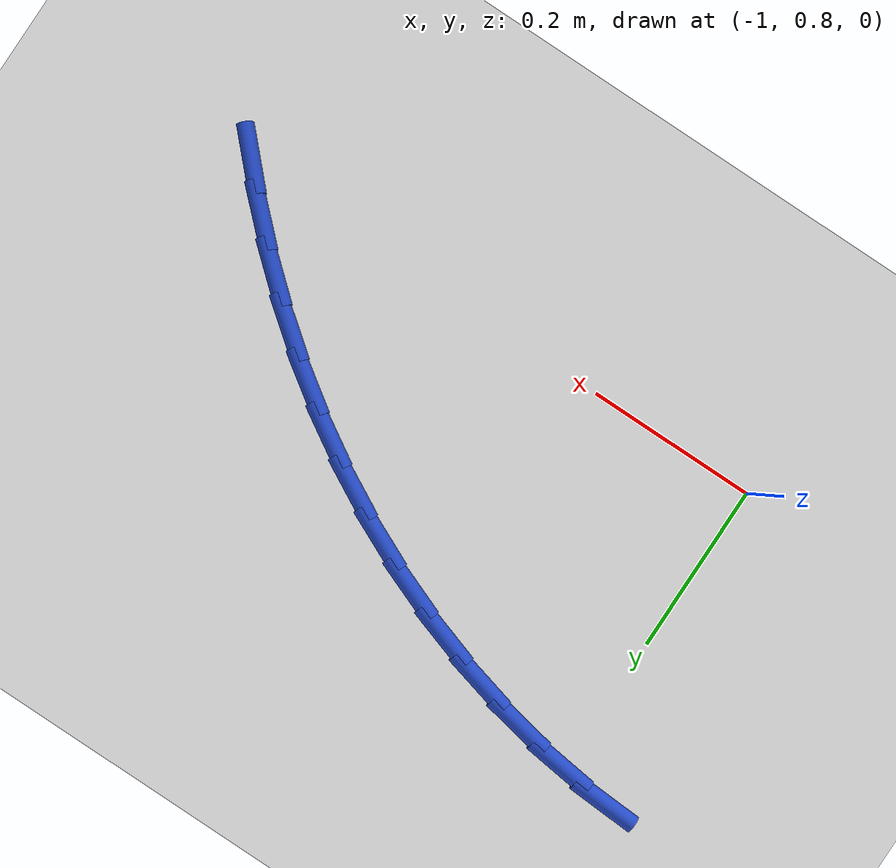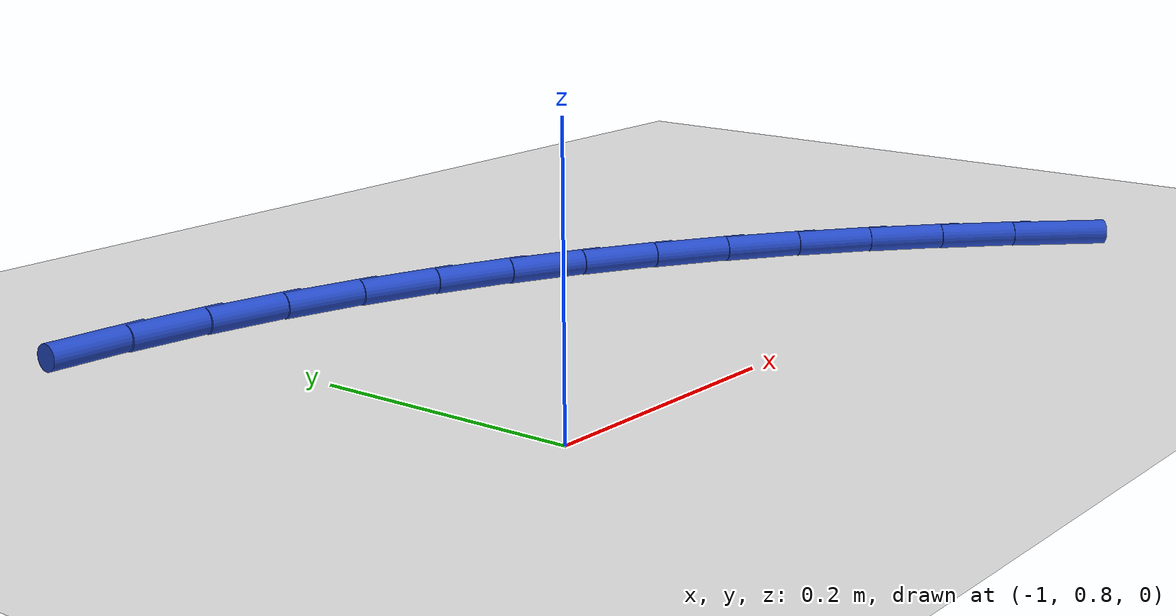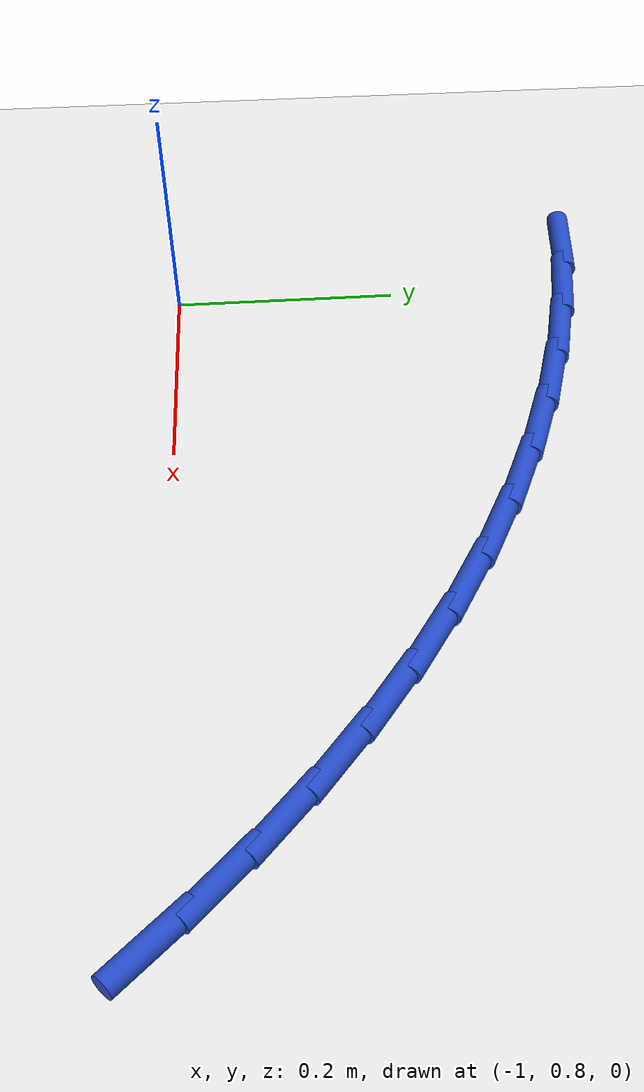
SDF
<sdf version="1.6">
 <world name="default">
  <model name="ground_plane">
   <static>1</static>
   <link name="link">
    <collision name="collision">
     <geometry><plane><normal>0 0 1</normal><size>100 100</size></plane></geometry>
     <surface><friction><ode><mu>100</mu><mu2>50</mu2></ode></friction></surface>
    </collision>
    <visual name="visual">
     <cast_shadows>0</cast_shadows>
     <geometry><plane><normal>0 0 1</normal><size>100 100</size></plane></geometry>
     <material>
      <script><uri>file://media/materials/scripts/gazebo.material</uri><name>Gazebo/WhiteGlow</name></script>
     </material>
    </visual>
   </link>
  </model>
  <model name="line">
   <link name="link_14">
    <pose>-0.3418738796191341 0.7961591052603095 0.01 0 1.57 -0.8116898446023478</pose>
    <collision name="collision">
     <geometry><cylinder><radius>0.01</radius><length>0.08</length></cylinder></geometry>
    </collision>
    <visual name="visual">
     <material>
      <script><name>Gazebo/Blue</name><uri>file://media/materials/scripts/gazebo.material</uri></script>
     </material>
     <geometry><cylinder><radius>0.01</radius><length>0.08</length></cylinder></geometry>
    </visual>
   </link>
   <link name="link_15">
    <pose>-0.3854197809296602 0.8420571811112181 0.01 0 1.57 -0.7625746614607867</pose>
    <collision name="collision">
     <geometry><cylinder><radius>0.01</radius><length>0.08</length></cylinder></geometry>
    </collision>
    <visual name="visual">
     <material>
      <script><name>Gazebo/Blue</name><uri>file://media/materials/scripts/gazebo.material</uri></script>
     </material>
     <geometry><cylinder><radius>0.01</radius><length>0.08</length></cylinder></geometry>
    </visual>
   </link>
   <link name="link_16">
    <pose>-0.4311023386738211 0.8857006519939538 0.01 0 1.57 -0.7119173935935194</pose>
    <collision name="collision">
     <geometry><cylinder><radius>0.01</radius><length>0.08</length></cylinder></geometry>
    </collision>
    <visual name="visual">
     <material>
      <script><name>Gazebo/Blue</name><uri>file://media/materials/scripts/gazebo.material</uri></script>
     </material>
     <geometry><cylinder><radius>0.01</radius><length>0.08</length></cylinder></geometry>
    </visual>
   </link>
   <link name="link_17">
    <pose>-0.47888413617262704 0.9269300416193859 0.01 0 1.57 -0.6596487336528123</pose>
    <collision name="collision">
     <geometry><cylinder><radius>0.01</radius><length>0.08</length></cylinder></geometry>
    </collision>
    <visual name="visual">
     <material>
      <script><name>Gazebo/Blue</name><uri>file://media/materials/scripts/gazebo.material</uri></script>
     </material>
     <geometry><cylinder><radius>0.01</radius><length>0.08</length></cylinder></geometry>
    </visual>
   </link>
   <link name="link_18">
    <pose>-0.5287277567470889 0.9655858736983844 0.01 0 1.57 -0.6057292429494565</pose>
    <collision name="collision">
     <geometry><cylinder><radius>0.01</radius><length>0.08</length></cylinder></geometry>
    </collision>
    <visual name="visual">
     <material>
      <script><name>Gazebo/Blue</name><uri>file://media/materials/scripts/gazebo.material</uri></script>
     </material>
     <geometry><cylinder><radius>0.01</radius><length>0.08</length></cylinder></geometry>
    </visual>
   </link>
   <link name="link_19">
    <pose>-0.5805957837182172 1.001508671941819 0.01 0 1.57 -0.5501551374509661</pose>
    <collision name="collision">
     <geometry><cylinder><radius>0.01</radius><length>0.08</length></cylinder></geometry>
    </collision>
    <visual name="visual">
     <material>
      <script><name>Gazebo/Blue</name><uri>file://media/materials/scripts/gazebo.material</uri></script>
     </material>
     <geometry><cylinder><radius>0.01</radius><length>0.08</length></cylinder></geometry>
    </visual>
   </link>
   <link name="link_20">
    <pose>-0.6344508004070224 1.0345389600605588 0.01 0 1.57 -0.4929639306275667</pose>
    <collision name="collision">
     <geometry><cylinder><radius>0.01</radius><length>0.08</length></cylinder></geometry>
    </collision>
    <visual name="visual">
     <material>
      <script><name>Gazebo/Blue</name><uri>file://media/materials/scripts/gazebo.material</uri></script>
     </material>
     <geometry><cylinder><radius>0.01</radius><length>0.08</length></cylinder></geometry>
    </visual>
   </link>
   <link name="link_21">
    <pose>-0.6902553901345152 1.0645172617654735 0.01 0 1.57 -0.43428792836240115</pose>
    <collision name="collision">
     <geometry><cylinder><radius>0.01</radius><length>0.08</length></cylinder></geometry>
    </collision>
    <visual name="visual">
     <material>
      <script><name>Gazebo/Blue</name><uri>file://media/materials/scripts/gazebo.material</uri></script>
     </material>
     <geometry><cylinder><radius>0.01</radius><length>0.08</length></cylinder></geometry>
    </visual>
   </link>
   <link name="link_22">
    <pose>-0.747961540461791 1.091282592102408 0.01 0 1.57 -0.37479240641343076</pose>
    <collision name="collision">
     <geometry><cylinder><radius>0.01</radius><length>0.08</length></cylinder></geometry>
    </collision>
    <visual name="visual">
     <material>
      <script><name>Gazebo/Blue</name><uri>file://media/materials/scripts/gazebo.material</uri></script>
     </material>
     <geometry><cylinder><radius>0.01</radius><length>0.08</length></cylinder></geometry>
    </visual>
   </link>
   <link name="link_23">
    <pose>-0.807367346820057 1.114652054364223 0.01 0 1.57 -0.314503400016314</pose>
    <collision name="collision">
     <geometry><cylinder><radius>0.01</radius><length>0.08</length></cylinder></geometry>
    </collision>
    <visual name="visual">
     <material>
      <script><name>Gazebo/Blue</name><uri>file://media/materials/scripts/gazebo.material</uri></script>
     </material>
     <geometry><cylinder><radius>0.01</radius><length>0.08</length></cylinder></geometry>
    </visual>
   </link>
   <link name="link_24">
    <pose>-0.8681547731627808 1.1344262165975907 0.01 0 1.57 -0.2528302958889005</pose>
    <collision name="collision">
     <geometry><cylinder><radius>0.01</radius><length>0.08</length></cylinder></geometry>
    </collision>
    <visual name="visual">
     <material>
      <script><name>Gazebo/Blue</name><uri>file://media/materials/scripts/gazebo.material</uri></script>
     </material>
     <geometry><cylinder><radius>0.01</radius><length>0.08</length></cylinder></geometry>
    </visual>
   </link>
   <link name="link_25">
    <pose>-0.9300029279503932 1.1504052402731086 0.01 0 1.57 -0.18918533602130413</pose>
    <collision name="collision">
     <geometry><cylinder><radius>0.01</radius><length>0.08</length></cylinder></geometry>
    </collision>
    <visual name="visual">
     <material>
      <script><name>Gazebo/Blue</name><uri>file://media/materials/scripts/gazebo.material</uri></script>
     </material>
     <geometry><cylinder><radius>0.01</radius><length>0.08</length></cylinder></geometry>
    </visual>
   </link>
   <link name="link_26">
    <pose>-0.992590919643325 1.1623892868613765 0.01 0 1.57 -0.1230008947094663</pose>
    <collision name="collision">
     <geometry><cylinder><radius>0.01</radius><length>0.08</length></cylinder></geometry>
    </collision>
    <visual name="visual">
     <material>
      <script><name>Gazebo/Blue</name><uri>file://media/materials/scripts/gazebo.material</uri></script>
     </material>
     <geometry><cylinder><radius>0.01</radius><length>0.08</length></cylinder></geometry>
    </visual>
   </link>
   <link name="link_27">
    <pose>-1.0555978567020063 1.1701785178329915 0.01 0 1.57 -0.05374072997921892</pose>
    <collision name="collision">
     <geometry><cylinder><radius>0.01</radius><length>0.08</length></cylinder></geometry>
    </collision>
    <visual name="visual">
     <material>
      <script><name>Gazebo/Blue</name><uri>file://media/materials/scripts/gazebo.material</uri></script>
     </material>
     <geometry><cylinder><radius>0.01</radius><length>0.08</length></cylinder></geometry>
    </visual>
   </link>
  </model>
 </world>
</sdf>
